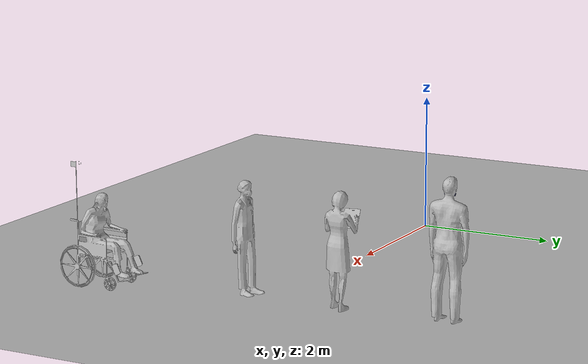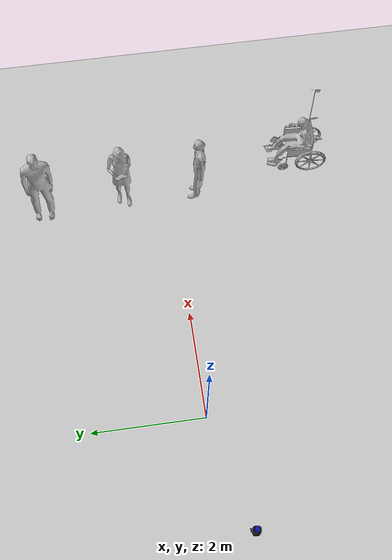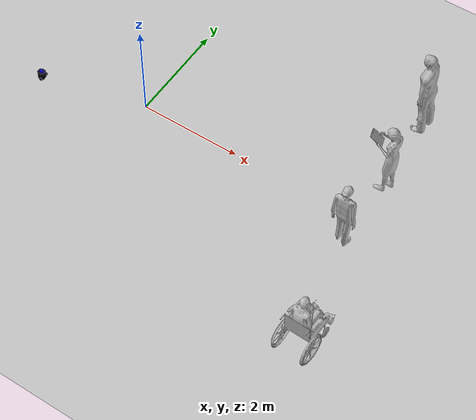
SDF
<sdf version="1.7">
 <world name="default">
  <model name="ground_plane">
   <static>1</static>
   <link name="link">
    <collision name="collision">
     <geometry><plane><normal>0 0 1</normal><size>100 100</size></plane></geometry>
     <surface><friction><ode><mu>100</mu><mu2>50</mu2></ode></friction></surface>
    </collision>
    <visual name="visual">
     <cast_shadows>0</cast_shadows>
     <geometry><plane><normal>0 0 1</normal><size>100 100</size></plane></geometry>
     <material>
      <script><uri>file://media/materials/scripts/gazebo.material</uri><name>Gazebo/Grey</name></script>
     </material>
    </visual>
   </link>
  </model>
  <light name="sun" type="directional">
   <pose>0 0 10 0 -0 0</pose>
   <diffuse>0.8 0.8 0.8 1</diffuse>
   <specular>0.2 0.2 0.2 1</specular>
   <attenuation>
    <range>1000</range>
    <constant>0.9</constant>
    <linear>0.01</linear>
    <quadratic>0.001</quadratic>
   </attenuation>
   <direction>-0.5 0.1 -0.9</direction>
   <spot><inner_angle>0</inner_angle><outer_angle>0</outer_angle><falloff>0</falloff></spot>
  </light>
  <scene><shadows>1</shadows><ambient>0.4 0.4 0.4 1</ambient><background>0.7 0.7 0.7 1</background></scene>
  <physics type="ode">
   <real_time_update_rate>1000</real_time_update_rate>
   <max_step_size>0.001</max_step_size>
   <real_time_factor>1</real_time_factor>
   <ode>
    <solver>
     <type>quick</type>
     <iters>150</iters>
     <precon_iters>0</precon_iters>
     <sor>1.4</sor>
     <use_dynamic_moi_rescaling>1</use_dynamic_moi_rescaling>
    </solver>
    <constraints>
     <cfm>1e-05</cfm>
     <erp>0.2</erp>
     <contact_max_correcting_vel>2000</contact_max_correcting_vel>
     <contact_surface_layer>0.01</contact_surface_layer>
    </constraints>
   </ode>
  </physics>
  <model name="Standing person">
   <pose>4.11013 -0.597722 -4e-06 0 -1e-06 1.59618</pose>
   <frame name="person_standing::__model__" attached_to="person_standing::link">
    <pose relative_to="__model__">3 -0.5 0 0 -0 3.1</pose>
   </frame>
   <link name="person_standing::link">
    <inertial>
     <pose>0 -0.1 0.95 0 -0 0</pose>
     <mass>80</mass>
     <inertia><ixx>24.88</ixx><ixy>0</ixy><ixz>0</ixz><iyy>25.73</iyy><iyz>0</iyz><izz>2.48</izz></inertia>
    </inertial>
    <collision name="bottom">
     <pose>0 -0.1 0.01 0 -0 0</pose>
     <geometry><box><size>0.5 0.35 0.02</size></box></geometry>
    </collision>
    <collision name="person">
     <pose>0 0 0.02 0.04 -0 0</pose>
     <geometry><mesh><uri>model://person_standing/meshes/standing.dae</uri></mesh></geometry>
    </collision>
    <visual name="visual">
     <pose>0 0 0.02 0.04 -0 0</pose>
     <geometry><mesh><uri>model://person_standing/meshes/standing.dae</uri></mesh></geometry>
    </visual>
    <pose relative_to="person_standing::__model__">0 0 0 0 -0 0</pose>
   </link>
  </model>
  <model name="Paciente">
   <pose>2.03147 -1.99074 0 0 -0 0</pose>
   <frame name="PatientWheelChair::__model__" attached_to="PatientWheelChair::body">
    <pose relative_to="__model__">3 -0.5 0 0 -0 3.1</pose>
   </frame>
   <static>1</static>
   <link name="PatientWheelChair::body">
    <pose relative_to="PatientWheelChair::__model__">0 0 0 0 -0 0</pose>
    <visual name="visual">
     <geometry><mesh><uri>model://PatientWheelChair/meshes/PatientWheelChair.obj</uri></mesh></geometry>
    </visual>
    <collision name="collision">
     <geometry><mesh><uri>model://PatientWheelChair/meshes/PatientWheelChair_Col.obj</uri></mesh></geometry>
    </collision>
   </link>
  </model>
  <model name="OpScrubs">
   <pose>1.53078 0.002255 0 0 -0 0</pose>
   <frame name="OpScrubs::__model__" attached_to="OpScrubs::body">
    <pose relative_to="__model__">3 -0.5 0 0 -0 3.1</pose>
   </frame>
   <static>1</static>
   <link name="OpScrubs::body">
    <pose relative_to="OpScrubs::__model__">0 0 0 0 -0 0</pose>
    <visual name="visual">
     <geometry><mesh><uri>model://OpScrubs/meshes/OpScrubs.obj</uri></mesh></geometry>
    </visual>
    <collision name="collision">
     <geometry><mesh><uri>model://OpScrubs/meshes/OpScrubs_Col.obj</uri></mesh></geometry>
    </collision>
   </link>
  </model>
  <model name="Nurse">
   <pose>1.6192 1.40072 0 0 -0 0</pose>
   <frame name="Nurse::__model__" attached_to="Nurse::body">
    <pose relative_to="__model__">3 -0.5 0 0 -0 3.1</pose>
   </frame>
   <static>1</static>
   <link name="Nurse::body">
    <pose relative_to="Nurse::__model__">0 0 0 0 -0 0</pose>
    <visual name="visual"><geometry><mesh><uri>model://Nurse/meshes/Nurse.obj</uri></mesh></geometry></visual>
    <collision name="collision">
     <geometry><mesh><uri>model://Nurse/meshes/Nurse_Col.obj</uri></mesh></geometry>
    </collision>
   </link>
  </model>
  <model name="Doctor">
   <frame name="__default__::__model__" attached_to="__default__::">
    <pose relative_to="__model__">0 0 0 0 -0 0</pose>
   </frame>
  </model>
  <model name="turtlebot3_burger_pi">
   <pose>-1.99985 -0.500002 0.008119 0.000163 0.01091 2.6e-05</pose>
   <link name="base_footprint">
    <inertial>
     <inertia><ixx>1</ixx><ixy>0</ixy><ixz>0</ixz><iyy>1</iyy><iyz>0</iyz><izz>1</izz></inertia>
     <mass>1</mass>
    </inertial>
   </link>
   <link name="base_link">
    <inertial>
     <pose>-0.032 0 0.07 0 -0 0</pose>
     <inertia>
      <ixx>0.723974</ixx>
      <ixy>4.6864e-10</ixy>
      <ixz>-1.09526e-08</ixz>
      <iyy>0.723974</iyy>
      <iyz>2.85826e-09</iyz>
      <izz>0.65305</izz>
     </inertia>
     <mass>0.825735</mass>
    </inertial>
    <collision name="base_collision">
     <pose>-0.032 0 0.07 0 -0 0</pose>
     <geometry><box><size>0.14 0.14 0.14</size></box></geometry>
    </collision>
    <visual name="base_visual">
     <pose>-0.032 0 0 0 -0 0</pose>
     <geometry>
      <mesh><uri>model://turtlebot3_burger/meshes/burger_base.dae</uri><scale>0.001 0.001 0.001</scale></mesh>
     </geometry>
    </visual>
   </link>
   <link name="imu_link">
    <sensor name="tb3_imu" type="imu">
     <always_on>1</always_on>
     <update_rate>200</update_rate>
     <imu>
      <angular_velocity>
       <x><noise type="gaussian"><mean>0</mean><stddev>0.0002</stddev></noise></x>
       <y><noise type="gaussian"><mean>0</mean><stddev>0.0002</stddev></noise></y>
       <z><noise type="gaussian"><mean>0</mean><stddev>0.0002</stddev></noise></z>
      </angular_velocity>
      <linear_acceleration>
       <x><noise type="gaussian"><mean>0</mean><stddev>0.017</stddev></noise></x>
       <y><noise type="gaussian"><mean>0</mean><stddev>0.017</stddev></noise></y>
       <z><noise type="gaussian"><mean>0</mean><stddev>0.017</stddev></noise></z>
      </linear_acceleration>
     </imu>
     <plugin name="turtlebot3_imu" filename="libgazebo_ros_imu_sensor.so">
      <ros><remapping>~/out:=imu</remapping></ros>
     </plugin>
    </sensor>
    <inertial>
     <inertia><ixx>1</ixx><ixy>0</ixy><ixz>0</ixz><iyy>1</iyy><iyz>0</iyz><izz>1</izz></inertia>
     <mass>1</mass>
    </inertial>
   </link>
   <link name="base_scan">
    <inertial>
     <pose>-0.02 0 0.161 0 -0 0</pose>
     <inertia><ixx>0.001</ixx><ixy>0</ixy><ixz>0</ixz><iyy>0.001</iyy><iyz>0</iyz><izz>0.001</izz></inertia>
     <mass>0.114</mass>
    </inertial>
    <collision name="lidar_sensor_collision">
     <pose>-0.02 0 0.161 0 -0 0</pose>
     <geometry><cylinder><radius>0.0508</radius><length>0.055</length></cylinder></geometry>
    </collision>
    <visual name="lidar_sensor_visual">
     <pose>-0.032 0 0.171 0 -0 0</pose>
     <geometry>
      <mesh><uri>model://turtlebot3_burger/meshes/lds.dae</uri><scale>0.001 0.001 0.001</scale></mesh>
     </geometry>
    </visual>
    <sensor name="hls_lfcd_lds" type="ray">
     <always_on>1</always_on>
     <visualize>1</visualize>
     <pose>-0.032 0 0.171 0 -0 0</pose>
     <update_rate>5</update_rate>
     <ray>
      <scan>
       <horizontal>
        <samples>360</samples>
        <resolution>1</resolution>
        <min_angle>0</min_angle>
        <max_angle>6.28</max_angle>
       </horizontal>
       <vertical><samples>1</samples><min_angle>0</min_angle><max_angle>0</max_angle></vertical>
      </scan>
      <range><min>0.12</min><max>3.5</max><resolution>0.015</resolution></range>
      <noise><type>gaussian</type><mean>0</mean><stddev>0.01</stddev></noise>
     </ray>
     <plugin name="turtlebot3_laserscan" filename="libgazebo_ros_ray_sensor.so">
      <ros><remapping>~/out:=scan</remapping></ros>
      <output_type>sensor_msgs/LaserScan</output_type>
      <frame_name>base_scan</frame_name>
     </plugin>
    </sensor>
   </link>
   <link name="wheel_left_link">
    <inertial>
     <pose>0 0.08 0.023 -1.57 0 0</pose>
     <inertia>
      <ixx>0.00181582</ixx>
      <ixy>-9.3392e-12</ixy>
      <ixz>1.04909e-11</ixz>
      <iyy>0.00329221</iyy>
      <iyz>5.75694e-11</iyz>
      <izz>0.00181582</izz>
     </inertia>
     <mass>0.0284989</mass>
    </inertial>
    <collision name="wheel_left_collision">
     <pose>0 0.08 0.023 -1.57 0 0</pose>
     <geometry><cylinder><radius>0.033</radius><length>0.018</length></cylinder></geometry>
     <surface>
      <friction>
       <ode><mu>100000</mu><mu2>100000</mu2><fdir1>0 0 0</fdir1><slip1>0</slip1><slip2>0</slip2></ode>
      </friction>
      <contact>
       <ode>
        <soft_cfm>0</soft_cfm>
        <soft_erp>0.2</soft_erp>
        <kp>100000</kp>
        <kd>1</kd>
        <max_vel>0.01</max_vel>
        <min_depth>0.001</min_depth>
       </ode>
      </contact>
     </surface>
    </collision>
    <visual name="wheel_left_visual">
     <pose>0 0.08 0.023 0 -0 0</pose>
     <geometry>
      <mesh><uri>model://turtlebot3_burger/meshes/tire.dae</uri><scale>0.001 0.001 0.001</scale></mesh>
     </geometry>
    </visual>
   </link>
   <link name="wheel_right_link">
    <inertial>
     <pose>0 -0.08 0.023 -1.57 0 0</pose>
     <inertia>
      <ixx>0.00181582</ixx>
      <ixy>-9.3392e-12</ixy>
      <ixz>1.04909e-11</ixz>
      <iyy>0.00329221</iyy>
      <iyz>5.75694e-11</iyz>
      <izz>0.00181582</izz>
     </inertia>
     <mass>0.0284989</mass>
    </inertial>
    <collision name="wheel_right_collision">
     <pose>0 -0.08 0.023 -1.57 0 0</pose>
     <geometry><cylinder><radius>0.033</radius><length>0.018</length></cylinder></geometry>
     <surface>
      <friction>
       <ode><mu>100000</mu><mu2>100000</mu2><fdir1>0 0 0</fdir1><slip1>0</slip1><slip2>0</slip2></ode>
      </friction>
      <contact>
       <ode>
        <soft_cfm>0</soft_cfm>
        <soft_erp>0.2</soft_erp>
        <kp>100000</kp>
        <kd>1</kd>
        <max_vel>0.01</max_vel>
        <min_depth>0.001</min_depth>
       </ode>
      </contact>
     </surface>
    </collision>
    <visual name="wheel_right_visual">
     <pose>0 -0.08 0.023 0 -0 0</pose>
     <geometry>
      <mesh><uri>model://turtlebot3_burger/meshes/tire.dae</uri><scale>0.001 0.001 0.001</scale></mesh>
     </geometry>
    </visual>
   </link>
   <link name="caster_back_link">
    <pose>-0.081 0 -0.004 -1.57 0 0</pose>
    <inertial>
     <mass>0.005</mass>
     <inertia><ixx>0.001</ixx><ixy>0</ixy><ixz>0</ixz><iyy>0.001</iyy><iyz>0</iyz><izz>0.001</izz></inertia>
    </inertial>
    <collision name="collision">
     <geometry><sphere><radius>0.005</radius></sphere></geometry>
     <surface>
      <contact>
       <ode>
        <soft_cfm>0</soft_cfm>
        <soft_erp>0.2</soft_erp>
        <kp>100000</kp>
        <kd>1</kd>
        <max_vel>0.01</max_vel>
        <min_depth>0.001</min_depth>
       </ode>
      </contact>
     </surface>
    </collision>
   </link>
   <link name="camera_link">
    <inertial>
     <inertia><ixx>1</ixx><ixy>0</ixy><ixz>0</ixz><iyy>1</iyy><iyz>0</iyz><izz>1</izz></inertia>
     <mass>1</mass>
    </inertial>
   </link>
   <link name="camera_rgb_optical_frame">
    <inertial>
     <pose>0.076 0 0.093 0 -0 0</pose>
     <inertia><ixx>0.001</ixx><ixy>0</ixy><ixz>0</ixz><iyy>0.001</iyy><iyz>0</iyz><izz>0.001</izz></inertia>
     <mass>0.035</mass>
    </inertial>
    <pose>0.063 0 0.093 0 -0 0</pose>
    <sensor name="camera" type="camera">
     <always_on>1</always_on>
     <visualize>1</visualize>
     <update_rate>30</update_rate>
     <camera name="picam">
      <horizontal_fov>1.0856</horizontal_fov>
      <image><width>640</width><height>480</height><format>R8G8B8</format></image>
      <clip><near>0.03</near><far>100</far></clip>
      <noise><type>gaussian</type><mean>0</mean><stddev>0.007</stddev></noise>
     </camera>
     <plugin name="camera_driver" filename="libgazebo_ros_camera.so"/>
    </sensor>
   </link>
   <joint name="base_joint" type="fixed">
    <parent>base_footprint</parent>
    <child>base_link</child>
    <pose>0 0 0.01 0 -0 0</pose>
   </joint>
   <joint name="wheel_left_joint" type="revolute">
    <parent>base_link</parent>
    <child>wheel_left_link</child>
    <pose>0 0.08 0.023 -1.57 0 0</pose>
    <axis>
     <xyz>0 0 1</xyz>
     <limit><lower>-1e+16</lower><upper>1e+16</upper></limit>
     <dynamics><spring_reference>0</spring_reference><spring_stiffness>0</spring_stiffness></dynamics>
    </axis>
   </joint>
   <joint name="wheel_right_joint" type="revolute">
    <parent>base_link</parent>
    <child>wheel_right_link</child>
    <pose>0 -0.08 0.023 -1.57 0 0</pose>
    <axis>
     <xyz>0 0 1</xyz>
     <limit><lower>-1e+16</lower><upper>1e+16</upper></limit>
     <dynamics><spring_reference>0</spring_reference><spring_stiffness>0</spring_stiffness></dynamics>
    </axis>
   </joint>
   <joint name="caster_back_joint" type="ball"><parent>base_link</parent><child>caster_back_link</child></joint>
   <joint name="imu_joint" type="fixed">
    <parent>base_link</parent>
    <child>imu_link</child>
    <pose>-0.032 0 0.068 0 -0 0</pose>
    <axis><xyz>0 0 1</xyz><limit><lower>-1e+16</lower><upper>1e+16</upper></limit></axis>
   </joint>
   <joint name="lidar_joint" type="fixed">
    <parent>base_link</parent>
    <child>base_scan</child>
    <pose>-0.032 0 0.171 0 -0 0</pose>
    <axis><xyz>0 0 1</xyz><limit><lower>-1e+16</lower><upper>1e+16</upper></limit></axis>
   </joint>
   <joint name="camera_joint" type="fixed">
    <parent>base_link</parent>
    <child>camera_link</child>
    <pose>0.063 -0.011 0.084 0 -0 0</pose>
    <axis><xyz>0 0 1</xyz><limit><lower>-1e+16</lower><upper>1e+16</upper></limit></axis>
   </joint>
   <joint name="camera_rgb_joint" type="fixed">
    <parent>camera_link</parent>
    <child>camera_rgb_optical_frame</child>
    <pose>0.003 0.011 0.009 0 -0 0</pose>
    <axis><xyz>0 0 1</xyz><limit><lower>-1e+16</lower><upper>1e+16</upper></limit></axis>
   </joint>
   <plugin name="turtlebot3_diff_drive" filename="libgazebo_ros_diff_drive.so">
    <update_rate>30</update_rate>
    <left_joint>wheel_left_joint</left_joint>
    <right_joint>wheel_right_joint</right_joint>
    <wheel_separation>0.160</wheel_separation>
    <wheel_diameter>0.066</wheel_diameter>
    <max_wheel_torque>20</max_wheel_torque>
    <max_wheel_acceleration>1.0</max_wheel_acceleration>
    <command_topic>cmd_vel</command_topic>
    <publish_odom>1</publish_odom>
    <publish_odom_tf>1</publish_odom_tf>
    <publish_wheel_tf>0</publish_wheel_tf>
    <odometry_topic>odom</odometry_topic>
    <odometry_frame>odom</odometry_frame>
    <robot_base_frame>base_footprint</robot_base_frame>
   </plugin>
   <plugin name="turtlebot3_joint_state" filename="libgazebo_ros_joint_state_publisher.so">
    <ros><remapping>~/out:=joint_states</remapping></ros>
    <update_rate>30</update_rate>
    <joint_name>wheel_left_joint</joint_name>
    <joint_name>wheel_right_joint</joint_name>
   </plugin>
  </model>
  <gravity>0 0 -9.8</gravity>
  <magnetic_field>6e-06 2.3e-05 -4.2e-05</magnetic_field>
  <atmosphere type="adiabatic"/>
  <spherical_coordinates>
   <surface_model>EARTH_WGS84</surface_model>
   <latitude_deg>0</latitude_deg>
   <longitude_deg>0</longitude_deg>
   <elevation>0</elevation>
   <heading_deg>0</heading_deg>
  </spherical_coordinates>
  <light name="user_point_light_0" type="point">
   <pose>1.61784 1.13471 1 0 -0 0</pose>
   <diffuse>0.5 0.5 0.5 1</diffuse>
   <specular>0.1 0.1 0.1 1</specular>
   <attenuation>
    <range>20</range>
    <constant>0.5</constant>
    <linear>0.01</linear>
    <quadratic>0.001</quadratic>
   </attenuation>
   <cast_shadows>0</cast_shadows>
   <direction>0 0 -1</direction>
  </light>
  <light name="user_point_light_1" type="point">
   <pose>1.79265 -1.73352 1 0 -0 0</pose>
   <diffuse>0.5 0.5 0.5 1</diffuse>
   <specular>0.1 0.1 0.1 1</specular>
   <attenuation>
    <range>20</range>
    <constant>0.5</constant>
    <linear>0.01</linear>
    <quadratic>0.001</quadratic>
   </attenuation>
   <cast_shadows>0</cast_shadows>
   <direction>0 0 -1</direction>
  </light>
 </world>
</sdf>
